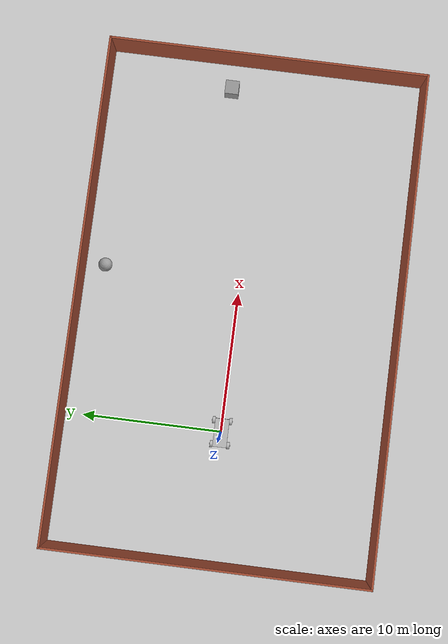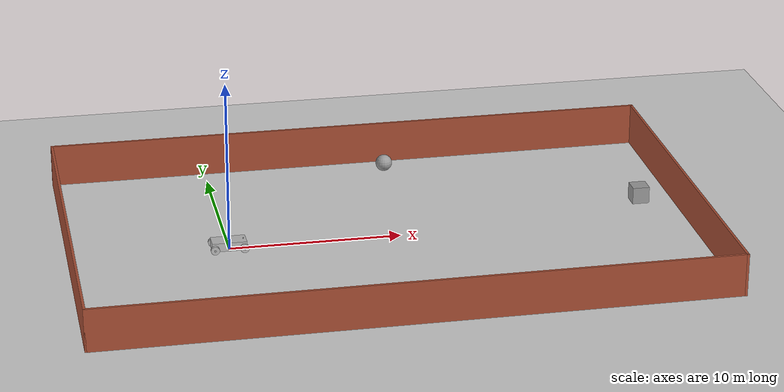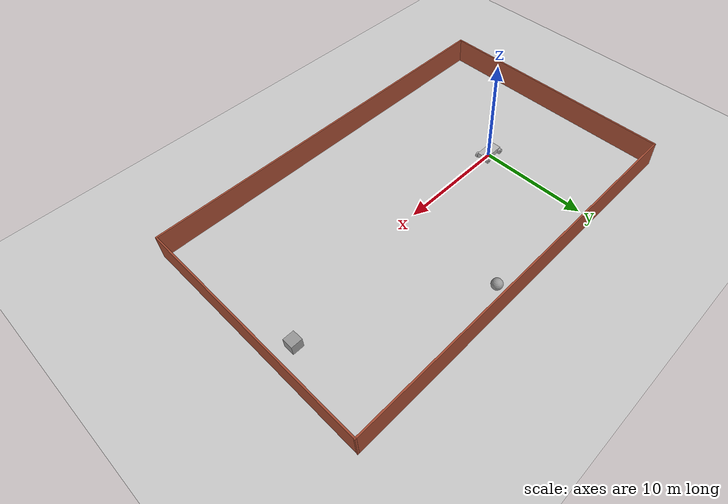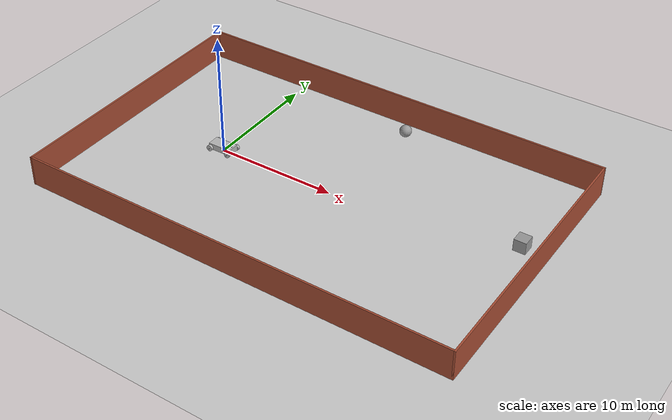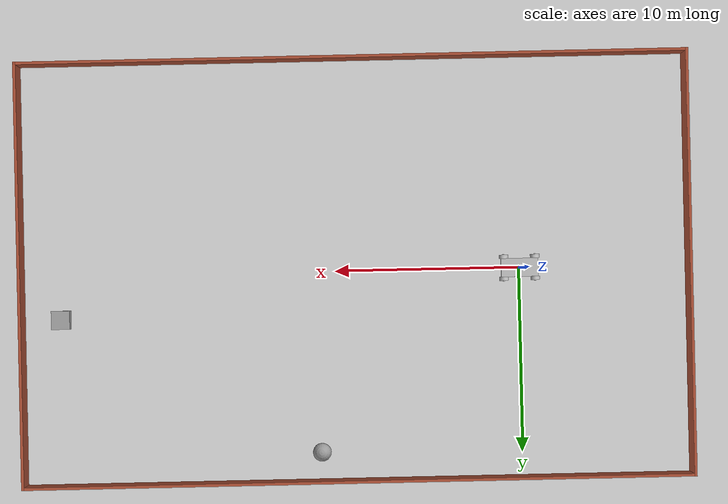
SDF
<sdf version="1.7">
 <world name="default">
  <light name="sun" type="directional">
   <pose>0 0 10 0 -0 0</pose>
   <diffuse>0.8 0.8 0.8 1</diffuse>
   <specular>0.2 0.2 0.2 1</specular>
   <attenuation>
    <range>1000</range>
    <constant>0.9</constant>
    <linear>0.01</linear>
    <quadratic>0.001</quadratic>
   </attenuation>
   <direction>-0.5 0.1 -0.9</direction>
   <spot><inner_angle>0</inner_angle><outer_angle>0</outer_angle><falloff>0</falloff></spot>
  </light>
  <model name="ground_plane">
   <static>1</static>
   <link name="link">
    <collision name="collision">
     <geometry><plane><normal>0 0 1</normal><size>100 100</size></plane></geometry>
     <surface>
      <contact><collide_bitmask>65535</collide_bitmask></contact>
      <friction><ode><mu>100</mu><mu2>50</mu2></ode></friction>
     </surface>
    </collision>
    <visual name="visual">
     <cast_shadows>0</cast_shadows>
     <geometry><plane><normal>0 0 1</normal><size>100 100</size></plane></geometry>
     <material>
      <script><uri>file://media/materials/scripts/gazebo.material</uri><name>Gazebo/Grey</name></script>
     </material>
    </visual>
   </link>
  </model>
  <gravity>0 0 -9.8</gravity>
  <magnetic_field>6e-06 2.3e-05 -4.2e-05</magnetic_field>
  <atmosphere type="adiabatic"/>
  <physics type="ode">
   <max_step_size>0.001</max_step_size>
   <real_time_factor>1</real_time_factor>
   <real_time_update_rate>1000</real_time_update_rate>
  </physics>
  <scene><ambient>0.4 0.4 0.4 1</ambient><background>0.7 0.7 0.7 1</background><shadows>1</shadows></scene>
  <spherical_coordinates>
   <surface_model>EARTH_WGS84</surface_model>
   <latitude_deg>0</latitude_deg>
   <longitude_deg>0</longitude_deg>
   <elevation>0</elevation>
   <heading_deg>0</heading_deg>
  </spherical_coordinates>
  <model name="robot">
   <link name="base_link">
    <inertial>
     <pose>0.025 0 0.029412 0 -0 0</pose>
     <mass>34</mass>
     <inertia>
      <ixx>0.470588</ixx>
      <ixy>0</ixy>
      <ixz>-0.4</ixz>
      <iyy>2.61684</iyy>
      <iyz>0</iyz>
      <izz>2.14625</izz>
     </inertia>
    </inertial>
    <collision name="base_link_fixed_joint_lump__car_body_collision">
     <pose>-1 0.5 -0.025 1.5708 -0 0</pose>
     <geometry>
      <mesh>
       <scale>0.001 0.001 0.001</scale>
       <uri>/home/erfan/catkin_ws/src/autonomous_car/meshes/badane.STL</uri>
      </mesh>
     </geometry>
    </collision>
    <collision name="base_link_fixed_joint_lump__IMU_sensor_link_collision_1">
     <pose>0 0 0.5 0 -0 0</pose>
     <geometry><box><size>0.05 0.05 0.05</size></box></geometry>
    </collision>
    <collision name="base_link_fixed_joint_lump__back_steering_collision_2">
     <pose>-0.85 0 0.125 1.5708 -0 0</pose>
     <geometry><cylinder><length>1.5</length><radius>0.05</radius></cylinder></geometry>
    </collision>
    <collision name="base_link_fixed_joint_lump__front_steering_collision_3">
     <pose>0.85 0 0.125 1.5708 -0 0</pose>
     <geometry><cylinder><length>1.5</length><radius>0.05</radius></cylinder></geometry>
    </collision>
    <collision name="base_link_fixed_joint_lump__camera_sensor_link_collision_4">
     <pose>0.85 0 0.5 0 -0 0</pose>
     <geometry><box><size>0.05 0.05 0.05</size></box></geometry>
    </collision>
    <visual name="base_link_fixed_joint_lump__car_body_visual">
     <pose>-1 0.5 -0.025 1.5708 -0 0</pose>
     <geometry>
      <mesh>
       <scale>0.001 0.001 0.001</scale>
       <uri>/home/erfan/catkin_ws/src/autonomous_car/meshes/badane.STL</uri>
      </mesh>
     </geometry>
    </visual>
    <visual name="base_link_fixed_joint_lump__IMU_sensor_link_visual_1">
     <pose>0 0 0.5 0 -0 0</pose>
     <geometry><box><size>0.05 0.05 0.05</size></box></geometry>
    </visual>
    <visual name="base_link_fixed_joint_lump__back_steering_visual_2">
     <pose>-0.85 0 0.125 1.5708 -0 0</pose>
     <geometry><cylinder><length>1.5</length><radius>0.05</radius></cylinder></geometry>
    </visual>
    <visual name="base_link_fixed_joint_lump__front_steering_visual_3">
     <pose>0.85 0 0.125 1.5708 -0 0</pose>
     <geometry><cylinder><length>1.5</length><radius>0.05</radius></cylinder></geometry>
    </visual>
    <visual name="base_link_fixed_joint_lump__camera_sensor_link_visual_4">
     <pose>0.85 0 0.5 0 -0 0</pose>
     <geometry><box><size>0.05 0.05 0.05</size></box></geometry>
    </visual>
    <sensor name="imu_sensor" type="imu">
     <always_on>1</always_on>
     <update_rate>100</update_rate>
     <visualize>1</visualize>
     <topic>__default_topic__</topic>
     <plugin name="imu_plugin" filename="libgazebo_ros_imu_sensor.so">
      <topicName>imu</topicName>
      <bodyName>imu_link</bodyName>
      <updateRateHZ>100.0</updateRateHZ>
      <gaussianNoise>0.00001</gaussianNoise>
      <xyzOffset>0 0 0</xyzOffset>
      <rpyOffset>0 0 0</rpyOffset>
      <frameName>imu_link</frameName>
      <initialOrientationAsReference>0</initialOrientationAsReference>
      <robotNamespace>/</robotNamespace>
     </plugin>
     <pose>0 0 0.5 0 -0 0</pose>
    </sensor>
    <sensor name="depth_camera" type="depth">
     <update_rate>20</update_rate>
     <camera>
      <horizontal_fov>1.0472</horizontal_fov>
      <image><width>640</width><height>480</height><format>R8G8B8</format></image>
      <clip><near>0.05</near><far>200</far></clip>
     </camera>
     <plugin name="camera_controller" filename="libgazebo_ros_openni_kinect.so">
      <baseline>0.2</baseline>
      <alwaysOn>1</alwaysOn>
      <updateRate>1.0</updateRate>
      <cameraName>depth_camera_ir</cameraName>
      <imageTopicName>/depth_camera/color/image_raw</imageTopicName>
      <cameraInfoTopicName>/depth_camera/color/camera_info</cameraInfoTopicName>
      <depthImageTopicName>/depth_camera/depth/image_raw</depthImageTopicName>
      <depthImageInfoTopicName>/depth_camera/depth/camera_info</depthImageInfoTopicName>
      <pointCloudTopicName>/depth_camera/depth/points</pointCloudTopicName>
      <frameName>camera_sensor_link</frameName>
      <pointCloudCutoff>0.5</pointCloudCutoff>
      <pointCloudCutoffMax>200.0</pointCloudCutoffMax>
      <distortionK1>0.00000001</distortionK1>
      <distortionK2>0.00000001</distortionK2>
      <distortionK3>0.00000001</distortionK3>
      <distortionT1>0.00000001</distortionT1>
      <distortionT2>0.00000001</distortionT2>
      <CxPrime>0</CxPrime>
      <Cx>0</Cx>
      <Cy>0</Cy>
      <focalLength>0</focalLength>
      <hackBaseline>0</hackBaseline>
      <robotNamespace>/</robotNamespace>
     </plugin>
     <pose>0.85 0 0.5 0 -0 0</pose>
    </sensor>
   </link>
   <joint name="left_back_wheel_joint" type="revolute">
    <pose relative_to="base_link">-0.85 -0.6 0.125 0 -0 0</pose>
    <parent>base_link</parent>
    <child>left_back_wheel</child>
    <axis>
     <xyz>0 1 0</xyz>
     <limit><lower>-1e+16</lower><upper>1e+16</upper></limit>
     <dynamics><spring_reference>0</spring_reference><spring_stiffness>0</spring_stiffness></dynamics>
    </axis>
   </joint>
   <link name="left_back_wheel">
    <pose relative_to="left_back_wheel_joint">0 0 0 0 -0 0</pose>
    <inertial>
     <mass>1.431</mass>
     <inertia><ixx>0</ixx><ixy>0</ixy><ixz>0</ixz><iyy>0</iyy><iyz>0</iyz><izz>0</izz></inertia>
    </inertial>
    <collision name="left_back_wheel_collision">
     <pose>-0.25 0.1 -0.25 1.5707 -0 0</pose>
     <geometry>
      <mesh>
       <scale>0.001 0.001 0.001</scale>
       <uri>/home/erfan/catkin_ws/src/autonomous_car/meshes/charkh.STL</uri>
      </mesh>
     </geometry>
    </collision>
    <visual name="left_back_wheel_visual">
     <pose>-0.25 0.1 -0.25 1.5707 -0 0</pose>
     <geometry>
      <mesh>
       <scale>0.001 0.001 0.001</scale>
       <uri>/home/erfan/catkin_ws/src/autonomous_car/meshes/charkh.STL</uri>
      </mesh>
     </geometry>
    </visual>
   </link>
   <joint name="left_wheel_joint" type="revolute">
    <pose relative_to="base_link">0.85 -0.6 0.125 0 -0 0</pose>
    <parent>base_link</parent>
    <child>left_wheel</child>
    <axis>
     <xyz>0 1 0</xyz>
     <limit><lower>-1e+16</lower><upper>1e+16</upper></limit>
     <dynamics><spring_reference>0</spring_reference><spring_stiffness>0</spring_stiffness></dynamics>
    </axis>
   </joint>
   <link name="left_wheel">
    <pose relative_to="left_wheel_joint">0 0 0 0 -0 0</pose>
    <inertial>
     <mass>1.431</mass>
     <inertia><ixx>0</ixx><ixy>0</ixy><ixz>0</ixz><iyy>0</iyy><iyz>0</iyz><izz>0</izz></inertia>
    </inertial>
    <collision name="left_wheel_collision">
     <pose>-0.25 0.1 -0.25 1.5707 -0 0</pose>
     <geometry>
      <mesh>
       <scale>0.001 0.001 0.001</scale>
       <uri>/home/erfan/catkin_ws/src/autonomous_car/meshes/charkh.STL</uri>
      </mesh>
     </geometry>
    </collision>
    <visual name="left_wheel_visual">
     <pose>-0.25 0.1 -0.25 1.5707 -0 0</pose>
     <geometry>
      <mesh>
       <scale>0.001 0.001 0.001</scale>
       <uri>/home/erfan/catkin_ws/src/autonomous_car/meshes/charkh.STL</uri>
      </mesh>
     </geometry>
    </visual>
   </link>
   <joint name="right_back_wheel_joint" type="revolute">
    <pose relative_to="base_link">-0.85 0.6 0.125 0 -0 0</pose>
    <parent>base_link</parent>
    <child>right_back_wheel</child>
    <axis>
     <xyz>0 1 0</xyz>
     <limit><lower>-1e+16</lower><upper>1e+16</upper></limit>
     <dynamics><spring_reference>0</spring_reference><spring_stiffness>0</spring_stiffness></dynamics>
    </axis>
   </joint>
   <link name="right_back_wheel">
    <pose relative_to="right_back_wheel_joint">0 0 0 0 -0 0</pose>
    <inertial>
     <mass>1.431</mass>
     <inertia><ixx>0</ixx><ixy>0</ixy><ixz>0</ixz><iyy>0</iyy><iyz>0</iyz><izz>0</izz></inertia>
    </inertial>
    <collision name="right_back_wheel_collision">
     <pose>-0.25 0.1 -0.25 1.5707 -0 0</pose>
     <geometry>
      <mesh>
       <scale>0.001 0.001 0.001</scale>
       <uri>/home/erfan/catkin_ws/src/autonomous_car/meshes/charkh.STL</uri>
      </mesh>
     </geometry>
    </collision>
    <visual name="right_back_wheel_visual">
     <pose>-0.25 0.1 -0.25 1.5707 -0 0</pose>
     <geometry>
      <mesh>
       <scale>0.001 0.001 0.001</scale>
       <uri>/home/erfan/catkin_ws/src/autonomous_car/meshes/charkh.STL</uri>
      </mesh>
     </geometry>
    </visual>
   </link>
   <joint name="right_wheel_joint" type="revolute">
    <pose relative_to="base_link">0.85 0.6 0.125 0 -0 0</pose>
    <parent>base_link</parent>
    <child>right_wheel</child>
    <axis>
     <xyz>0 1 0</xyz>
     <limit><lower>-1e+16</lower><upper>1e+16</upper></limit>
     <dynamics><spring_reference>0</spring_reference><spring_stiffness>0</spring_stiffness></dynamics>
    </axis>
   </joint>
   <link name="right_wheel">
    <pose relative_to="right_wheel_joint">0 0 0 0 -0 0</pose>
    <inertial>
     <mass>1.431</mass>
     <inertia><ixx>0</ixx><ixy>0</ixy><ixz>0</ixz><iyy>0</iyy><iyz>0</iyz><izz>0</izz></inertia>
    </inertial>
    <collision name="right_wheel_collision">
     <pose>-0.25 0.1 -0.25 1.5707 -0 0</pose>
     <geometry>
      <mesh>
       <scale>0.001 0.001 0.001</scale>
       <uri>/home/erfan/catkin_ws/src/autonomous_car/meshes/charkh.STL</uri>
      </mesh>
     </geometry>
    </collision>
    <visual name="right_wheel_visual">
     <pose>-0.25 0.1 -0.25 1.5707 -0 0</pose>
     <geometry>
      <mesh>
       <scale>0.001 0.001 0.001</scale>
       <uri>/home/erfan/catkin_ws/src/autonomous_car/meshes/charkh.STL</uri>
      </mesh>
     </geometry>
    </visual>
   </link>
   <static>0</static>
   <plugin name="gazebo_ros_control" filename="libgazebo_ros_control.so">
    <robotSimType>gazebo_ros_control/DefaultRobotHWSim</robotSimType>
    <legacyModeNS>1</legacyModeNS>
    <robotNamespace>/</robotNamespace>
   </plugin>
   <pose>-0.029408 -0.010429 0.124992 5e-06 2e-06 0.008211</pose>
   <fdir>1 0 0</fdir>
   <fdir>1 0 0</fdir>
   <fdir>1 0 0</fdir>
   <fdir>1 0 0</fdir>
  </model>
  <model name="Untitled">
   <pose>8.91713 -0.099977 0 0 -0 0</pose>
   <link name="Wall_4">
    <collision name="Wall_4_Collision">
     <geometry><box><size>23 0.15 2.5</size></box></geometry>
     <pose>0 0 1.25 0 -0 0</pose>
    </collision>
    <visual name="Wall_4_Visual">
     <pose>0 0 1.25 0 -0 0</pose>
     <geometry><box><size>23 0.15 2.5</size></box></geometry>
     <material>
      <script><uri>file://media/materials/scripts/gazebo.material</uri><name>Gazebo/Bricks</name></script>
      <ambient>1 1 1 1</ambient>
     </material>
     <meta><layer>0</layer></meta>
    </visual>
    <pose>-18.05 0 0 0 -0 -1.5708</pose>
   </link>
   <link name="Wall_5">
    <collision name="Wall_5_Collision">
     <geometry><box><size>36.25 0.15 2.5</size></box></geometry>
     <pose>0 0 1.25 0 -0 0</pose>
    </collision>
    <visual name="Wall_5_Visual">
     <pose>0 0 1.25 0 -0 0</pose>
     <geometry><box><size>36.25 0.15 2.5</size></box></geometry>
     <material>
      <script><uri>file://media/materials/scripts/gazebo.material</uri><name>Gazebo/Bricks</name></script>
      <ambient>1 1 1 1</ambient>
     </material>
     <meta><layer>0</layer></meta>
    </visual>
    <pose>1e-06 -11.425 0 0 -0 0</pose>
   </link>
   <link name="Wall_6">
    <collision name="Wall_6_Collision">
     <geometry><box><size>23 0.15 2.5</size></box></geometry>
     <pose>0 0 1.25 0 -0 0</pose>
    </collision>
    <visual name="Wall_6_Visual">
     <pose>0 0 1.25 0 -0 0</pose>
     <geometry><box><size>23 0.15 2.5</size></box></geometry>
     <material>
      <script><uri>file://media/materials/scripts/gazebo.material</uri><name>Gazebo/Bricks</name></script>
      <ambient>1 1 1 1</ambient>
     </material>
     <meta><layer>0</layer></meta>
    </visual>
    <pose>18.05 0 0 0 -0 1.5708</pose>
   </link>
   <link name="Wall_7">
    <collision name="Wall_7_Collision">
     <geometry><box><size>36.25 0.15 2.5</size></box></geometry>
     <pose>0 0 1.25 0 -0 0</pose>
    </collision>
    <visual name="Wall_7_Visual">
     <pose>0 0 1.25 0 -0 0</pose>
     <geometry><box><size>36.25 0.15 2.5</size></box></geometry>
     <material>
      <script><uri>file://media/materials/scripts/gazebo.material</uri><name>Gazebo/Bricks</name></script>
      <ambient>1 1 1 1</ambient>
     </material>
     <meta><layer>0</layer></meta>
    </visual>
    <pose>1e-06 11.425 0 0 -0 3.14159</pose>
   </link>
   <static>1</static>
  </model>
  <model name="unit_sphere">
   <pose>10.8899 9.78748 0.5 0 -0 0</pose>
   <link name="link">
    <inertial>
     <mass>1</mass>
     <inertia><ixx>0.1</ixx><ixy>0</ixy><ixz>0</ixz><iyy>0.1</iyy><iyz>0</iyz><izz>0.1</izz></inertia>
    </inertial>
    <collision name="collision"><geometry><sphere><radius>0.5</radius></sphere></geometry></collision>
    <visual name="visual">
     <geometry><sphere><radius>0.5</radius></sphere></geometry>
     <material>
      <script><name>Gazebo/Grey</name><uri>file://media/materials/scripts/gazebo.material</uri></script>
     </material>
    </visual>
   </link>
  </model>
  <model name="unit_box">
   <pose>24.9093 2.32381 0.5 0 -0 0</pose>
   <link name="link">
    <inertial>
     <mass>1</mass>
     <inertia>
      <ixx>0.166667</ixx>
      <ixy>0</ixy>
      <ixz>0</ixz>
      <iyy>0.166667</iyy>
      <iyz>0</iyz>
      <izz>0.166667</izz>
     </inertia>
    </inertial>
    <collision name="collision"><geometry><box><size>1 1 1</size></box></geometry></collision>
    <visual name="visual">
     <geometry><box><size>1 1 1</size></box></geometry>
     <material>
      <script><name>Gazebo/Grey</name><uri>file://media/materials/scripts/gazebo.material</uri></script>
     </material>
    </visual>
   </link>
  </model>
 </world>
</sdf>
